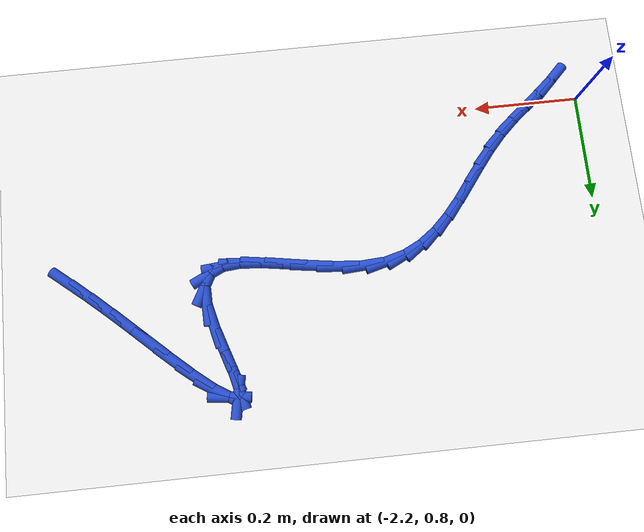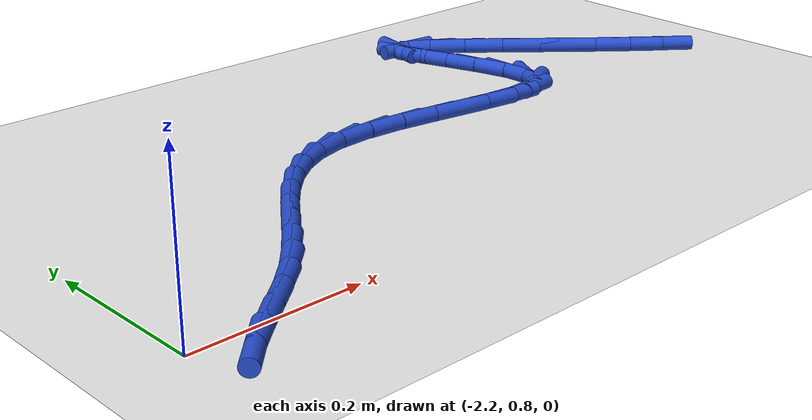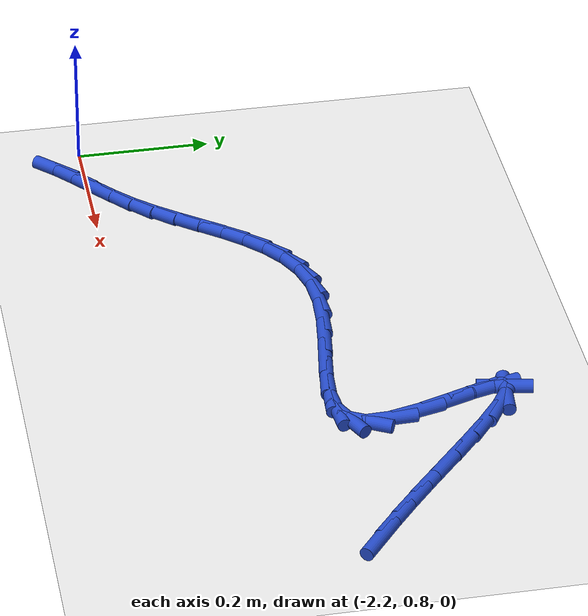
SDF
<sdf version="1.6">
 <world name="default">
  <model name="ground_plane">
   <static>1</static>
   <link name="link">
    <collision name="collision">
     <geometry><plane><normal>0 0 1</normal><size>100 100</size></plane></geometry>
     <surface><friction><ode><mu>100</mu><mu2>50</mu2></ode></friction></surface>
    </collision>
    <visual name="visual">
     <cast_shadows>0</cast_shadows>
     <geometry><plane><normal>0 0 1</normal><size>100 100</size></plane></geometry>
     <material>
      <script><uri>file://media/materials/scripts/gazebo.material</uri><name>Gazebo/WhiteGlow</name></script>
     </material>
    </visual>
   </link>
  </model>
  <model name="line">
   <link name="link_53">
    <pose>-1.193185371960711 1.0654235564630326 0.01 0 1.57 -0.6814885398059458</pose>
    <collision name="collision">
     <geometry><cylinder><radius>0.01</radius><length>0.08</length></cylinder></geometry>
    </collision>
    <visual name="visual">
     <material>
      <script><name>Gazebo/Blue</name><uri>file://media/materials/scripts/gazebo.material</uri></script>
     </material>
     <geometry><cylinder><radius>0.01</radius><length>0.08</length></cylinder></geometry>
    </visual>
   </link>
   <link name="link_54">
    <pose>-1.2267887813682719 1.0926801652494988 0.01 0 1.57 -0.705577640714517</pose>
    <collision name="collision">
     <geometry><cylinder><radius>0.01</radius><length>0.08</length></cylinder></geometry>
    </collision>
    <visual name="visual">
     <material>
      <script><name>Gazebo/Blue</name><uri>file://media/materials/scripts/gazebo.material</uri></script>
     </material>
     <geometry><cylinder><radius>0.01</radius><length>0.08</length></cylinder></geometry>
    </visual>
   </link>
   <link name="link_55">
    <pose>-1.262150488786631 1.12280367865597 0.01 0 1.57 -0.7235266784572728</pose>
    <collision name="collision">
     <geometry><cylinder><radius>0.01</radius><length>0.08</length></cylinder></geometry>
    </collision>
    <visual name="visual">
     <material>
      <script><name>Gazebo/Blue</name><uri>file://media/materials/scripts/gazebo.material</uri></script>
     </material>
     <geometry><cylinder><radius>0.01</radius><length>0.08</length></cylinder></geometry>
    </visual>
   </link>
   <link name="link_56">
    <pose>-1.299629878728414 1.1559102302926327 0.01 0 1.57 -0.73524054251963</pose>
    <collision name="collision">
     <geometry><cylinder><radius>0.01</radius><length>0.08</length></cylinder></geometry>
    </collision>
    <visual name="visual">
     <material>
      <script><name>Gazebo/Blue</name><uri>file://media/materials/scripts/gazebo.material</uri></script>
     </material>
     <geometry><cylinder><radius>0.01</radius><length>0.08</length></cylinder></geometry>
    </visual>
   </link>
   <link name="link_57">
    <pose>-1.3393691816638427 1.1918504423703078 0.01 0 1.57 -0.7340832677108964</pose>
    <collision name="collision">
     <geometry><cylinder><radius>0.01</radius><length>0.08</length></cylinder></geometry>
    </collision>
    <visual name="visual">
     <material>
      <script><name>Gazebo/Blue</name><uri>file://media/materials/scripts/gazebo.material</uri></script>
     </material>
     <geometry><cylinder><radius>0.01</radius><length>0.08</length></cylinder></geometry>
    </visual>
   </link>
   <link name="link_58">
    <pose>-1.3796368060279225 1.2281838394751738 0.01 0 1.57 -0.7154269703714127</pose>
    <collision name="collision">
     <geometry><cylinder><radius>0.01</radius><length>0.08</length></cylinder></geometry>
    </collision>
    <visual name="visual">
     <material>
      <script><name>Gazebo/Blue</name><uri>file://media/materials/scripts/gazebo.material</uri></script>
     </material>
     <geometry><cylinder><radius>0.01</radius><length>0.08</length></cylinder></geometry>
    </visual>
   </link>
   <link name="link_59">
    <pose>-1.4177431746995484 1.261298629819285 0.01 0 1.57 -0.6687835529094174</pose>
    <collision name="collision">
     <geometry><cylinder><radius>0.01</radius><length>0.08</length></cylinder></geometry>
    </collision>
    <visual name="visual">
     <material>
      <script><name>Gazebo/Blue</name><uri>file://media/materials/scripts/gazebo.material</uri></script>
     </material>
     <geometry><cylinder><radius>0.01</radius><length>0.08</length></cylinder></geometry>
    </visual>
   </link>
   <link name="link_60">
    <pose>-1.4509909949962605 1.287573587899027 0.01 0 1.57 -0.5517524189292895</pose>
    <collision name="collision">
     <geometry><cylinder><radius>0.01</radius><length>0.08</length></cylinder></geometry>
    </collision>
    <visual name="visual">
     <material>
      <script><name>Gazebo/Blue</name><uri>file://media/materials/scripts/gazebo.material</uri></script>
     </material>
     <geometry><cylinder><radius>0.01</radius><length>0.08</length></cylinder></geometry>
    </visual>
   </link>
   <link name="link_61">
    <pose>-1.4766829742356031 1.3033874882107896 0.01 0 1.57 -0.11169295148060926</pose>
    <collision name="collision">
     <geometry><cylinder><radius>0.01</radius><length>0.08</length></cylinder></geometry>
    </collision>
    <visual name="visual">
     <material>
      <script><name>Gazebo/Blue</name><uri>file://media/materials/scripts/gazebo.material</uri></script>
     </material>
     <geometry><cylinder><radius>0.01</radius><length>0.08</length></cylinder></geometry>
    </visual>
   </link>
   <link name="link_62">
    <pose>-1.4921218197351163 1.305119105250959 0.01 0 1.57 1.3940644213895959</pose>
    <collision name="collision">
     <geometry><cylinder><radius>0.01</radius><length>0.08</length></cylinder></geometry>
    </collision>
    <visual name="visual">
     <material>
      <script><name>Gazebo/Blue</name><uri>file://media/materials/scripts/gazebo.material</uri></script>
     </material>
     <geometry><cylinder><radius>0.01</radius><length>0.08</length></cylinder></geometry>
    </visual>
   </link>
   <link name="link_63">
    <pose>-1.4949090119919577 1.2895129072455203 0.01 0 1.57 -1.3175466240135953</pose>
    <collision name="collision">
     <geometry><cylinder><radius>0.01</radius><length>0.08</length></cylinder></geometry>
    </collision>
    <visual name="visual">
     <material>
      <script><name>Gazebo/Blue</name><uri>file://media/materials/scripts/gazebo.material</uri></script>
     </material>
     <geometry><cylinder><radius>0.01</radius><length>0.08</length></cylinder></geometry>
    </visual>
   </link>
   <link name="link_64">
    <pose>-1.4868822742854615 1.2584984577643017 0.01 0 1.57 -1.2421992598436171</pose>
    <collision name="collision">
     <geometry><cylinder><radius>0.01</radius><length>0.08</length></cylinder></geometry>
    </collision>
    <visual name="visual">
     <material>
      <script><name>Gazebo/Blue</name><uri>file://media/materials/scripts/gazebo.material</uri></script>
     </material>
     <geometry><cylinder><radius>0.01</radius><length>0.08</length></cylinder></geometry>
    </visual>
   </link>
   <link name="link_65">
    <pose>-1.473024576947186 1.217855053899099 0.01 0 1.57 -1.2524839921926199</pose>
    <collision name="collision">
     <geometry><cylinder><radius>0.01</radius><length>0.08</length></cylinder></geometry>
    </collision>
    <visual name="visual">
     <material>
      <script><name>Gazebo/Blue</name><uri>file://media/materials/scripts/gazebo.material</uri></script>
     </material>
     <geometry><cylinder><radius>0.01</radius><length>0.08</length></cylinder></geometry>
    </visual>
   </link>
   <link name="link_66">
    <pose>-1.458393380849566 1.1734531680063263 0.01 0 1.57 -1.3308367046124268</pose>
    <collision name="collision">
     <geometry><cylinder><radius>0.01</radius><length>0.08</length></cylinder></geometry>
    </collision>
    <visual name="visual">
     <material>
      <script><name>Gazebo/Blue</name><uri>file://media/materials/scripts/gazebo.material</uri></script>
     </material>
     <geometry><cylinder><radius>0.01</radius><length>0.08</length></cylinder></geometry>
    </visual>
   </link>
   <link name="link_67">
    <pose>-1.4480461468650367 1.1311632724423997 0.01 0 1.57 -1.5414716506826103</pose>
    <collision name="collision">
     <geometry><cylinder><radius>0.01</radius><length>0.08</length></cylinder></geometry>
    </collision>
    <visual name="visual">
     <material>
      <script><name>Gazebo/Blue</name><uri>file://media/materials/scripts/gazebo.material</uri></script>
     </material>
     <geometry><cylinder><radius>0.01</radius><length>0.08</length></cylinder></geometry>
    </visual>
   </link>
   <link name="link_68">
    <pose>-1.4470397856577737 1.0968552133212364 0.01 0 1.57 1.0788783696815802</pose>
    <collision name="collision">
     <geometry><cylinder><radius>0.01</radius><length>0.08</length></cylinder></geometry>
    </collision>
    <visual name="visual">
     <material>
      <script><name>Gazebo/Blue</name><uri>file://media/materials/scripts/gazebo.material</uri></script>
     </material>
     <geometry><cylinder><radius>0.01</radius><length>0.08</length></cylinder></geometry>
    </visual>
   </link>
   <link name="link_69">
    <pose>-1.4589219355356933 1.0746809954239753 0.01 0 1.57 0.4496814450634575</pose>
    <collision name="collision">
     <geometry><cylinder><radius>0.01</radius><length>0.08</length></cylinder></geometry>
    </collision>
    <visual name="visual">
     <material>
      <script><name>Gazebo/Blue</name><uri>file://media/materials/scripts/gazebo.material</uri></script>
     </material>
     <geometry><cylinder><radius>0.01</radius><length>0.08</length></cylinder></geometry>
    </visual>
   </link>
   <link name="link_70">
    <pose>-1.4824404182138615 1.0633295119212058 0.01 0 1.57 0.08848971333045619</pose>
    <collision name="collision">
     <geometry><cylinder><radius>0.01</radius><length>0.08</length></cylinder></geometry>
    </collision>
    <visual name="visual">
     <material>
      <script><name>Gazebo/Blue</name><uri>file://media/materials/scripts/gazebo.material</uri></script>
     </material>
     <geometry><cylinder><radius>0.01</radius><length>0.08</length></cylinder></geometry>
    </visual>
   </link>
   <link name="link_71">
    <pose>-1.5153910452092794 1.0604060858374942 0.01 0 1.57 -0.07724925856744368</pose>
    <collision name="collision">
     <geometry><cylinder><radius>0.01</radius><length>0.08</length></cylinder></geometry>
    </collision>
    <visual name="visual">
     <material>
      <script><name>Gazebo/Blue</name><uri>file://media/materials/scripts/gazebo.material</uri></script>
     </material>
     <geometry><cylinder><radius>0.01</radius><length>0.08</length></cylinder></geometry>
    </visual>
   </link>
   <link name="link_72">
    <pose>-1.5555696280389488 1.063516040197406 0.01 0 1.57 -0.1482041327249778</pose>
    <collision name="collision">
     <geometry><cylinder><radius>0.01</radius><length>0.08</length></cylinder></geometry>
    </collision>
    <visual name="visual">
     <material>
      <script><name>Gazebo/Blue</name><uri>file://media/materials/scripts/gazebo.material</uri></script>
     </material>
     <geometry><cylinder><radius>0.01</radius><length>0.08</length></cylinder></geometry>
    </visual>
   </link>
   <link name="link_73">
    <pose>-1.600771978219871 1.0702646980255075 0.01 0 1.57 -0.16492639531164513</pose>
    <collision name="collision">
     <geometry><cylinder><radius>0.01</radius><length>0.08</length></cylinder></geometry>
    </collision>
    <visual name="visual">
     <material>
      <script><name>Gazebo/Blue</name><uri>file://media/materials/scripts/gazebo.material</uri></script>
     </material>
     <geometry><cylinder><radius>0.01</radius><length>0.08</length></cylinder></geometry>
    </visual>
   </link>
   <link name="link_74">
    <pose>-1.6487939072690494 1.078257382346365 0.01 0 1.57 -0.1397574794900413</pose>
    <collision name="collision">
     <geometry><cylinder><radius>0.01</radius><length>0.08</length></cylinder></geometry>
    </collision>
    <visual name="visual">
     <material>
      <script><name>Gazebo/Blue</name><uri>file://media/materials/scripts/gazebo.material</uri></script>
     </material>
     <geometry><cylinder><radius>0.01</radius><length>0.08</length></cylinder></geometry>
    </visual>
   </link>
   <link name="link_75">
    <pose>-1.697431226703484 1.0850994161845446 0.01 0 1.57 -0.06995600874429944</pose>
    <collision name="collision">
     <geometry><cylinder><radius>0.01</radius><length>0.08</length></cylinder></geometry>
    </collision>
    <visual name="visual">
     <material>
      <script><name>Gazebo/Blue</name><uri>file://media/materials/scripts/gazebo.material</uri></script>
     </material>
     <geometry><cylinder><radius>0.01</radius><length>0.08</length></cylinder></geometry>
    </visual>
   </link>
   <link name="link_76">
    <pose>-1.7444797480401786 1.088396122564613 0.01 0 1.57 0.060960981338641224</pose>
    <collision name="collision">
     <geometry><cylinder><radius>0.01</radius><length>0.08</length></cylinder></geometry>
    </collision>
    <visual name="visual">
     <material>
      <script><name>Gazebo/Blue</name><uri>file://media/materials/scripts/gazebo.material</uri></script>
     </material>
     <geometry><cylinder><radius>0.01</radius><length>0.08</length></cylinder></geometry>
    </visual>
   </link>
   <link name="link_77">
    <pose>-1.7877378441819778 1.085755795064381 0.01 0 1.57 0.2573866097531275</pose>
    <collision name="collision">
     <geometry><cylinder><radius>0.01</radius><length>0.08</length></cylinder></geometry>
    </collision>
    <visual name="visual">
     <material>
      <script><name>Gazebo/Blue</name><uri>file://media/materials/scripts/gazebo.material</uri></script>
     </material>
     <geometry><cylinder><radius>0.01</radius><length>0.08</length></cylinder></geometry>
    </visual>
   </link>
   <link name="link_78">
    <pose>-1.8258188793652366 1.0757319090098154 0.01 0 1.57 0.45929069451560806</pose>
    <collision name="collision">
     <geometry><cylinder><radius>0.01</radius><length>0.08</length></cylinder></geometry>
    </collision>
    <visual name="visual">
     <material>
      <script><name>Gazebo/Blue</name><uri>file://media/materials/scripts/gazebo.material</uri></script>
     </material>
     <geometry><cylinder><radius>0.01</radius><length>0.08</length></cylinder></geometry>
    </visual>
   </link>
   <link name="link_79">
    <pose>-1.8593108027349114 1.0591679537909169 0.01 0 1.57 0.6344700896552029</pose>
    <collision name="collision">
     <geometry><cylinder><radius>0.01</radius><length>0.08</length></cylinder></geometry>
    </collision>
    <visual name="visual">
     <material>
      <script><name>Gazebo/Blue</name><uri>file://media/materials/scripts/gazebo.material</uri></script>
     </material>
     <geometry><cylinder><radius>0.01</radius><length>0.08</length></cylinder></geometry>
    </visual>
   </link>
   <link name="link_80">
    <pose>-1.8890947590160045 1.0372474507704252 0.01 0 1.57 0.76912073857601</pose>
    <collision name="collision">
     <geometry><cylinder><radius>0.01</radius><length>0.08</length></cylinder></geometry>
    </collision>
    <visual name="visual">
     <material>
      <script><name>Gazebo/Blue</name><uri>file://media/materials/scripts/gazebo.material</uri></script>
     </material>
     <geometry><cylinder><radius>0.01</radius><length>0.08</length></cylinder></geometry>
    </visual>
   </link>
   <link name="link_81">
    <pose>-1.9160518929335189 1.0111539213110818 0.01 0 1.57 0.8605243986561665</pose>
    <collision name="collision">
     <geometry><cylinder><radius>0.01</radius><length>0.08</length></cylinder></geometry>
    </collision>
    <visual name="visual">
     <material>
      <script><name>Gazebo/Blue</name><uri>file://media/materials/scripts/gazebo.material</uri></script>
     </material>
     <geometry><cylinder><radius>0.01</radius><length>0.08</length></cylinder></geometry>
    </visual>
   </link>
   <link name="link_82">
    <pose>-1.9410633492124556 0.982070886775626 0.01 0 1.57 0.911325802203178</pose>
    <collision name="collision">
     <geometry><cylinder><radius>0.01</radius><length>0.08</length></cylinder></geometry>
    </collision>
    <visual name="visual">
     <material>
      <script><name>Gazebo/Blue</name><uri>file://media/materials/scripts/gazebo.material</uri></script>
     </material>
     <geometry><cylinder><radius>0.01</radius><length>0.08</length></cylinder></geometry>
    </visual>
   </link>
   <link name="link_83">
    <pose>-1.9650102725778178 0.9511818685267979 0.01 0 1.57 0.9246616573894268</pose>
    <collision name="collision">
     <geometry><cylinder><radius>0.01</radius><length>0.08</length></cylinder></geometry>
    </collision>
    <visual name="visual">
     <material>
      <script><name>Gazebo/Blue</name><uri>file://media/materials/scripts/gazebo.material</uri></script>
     </material>
     <geometry><cylinder><radius>0.01</radius><length>0.08</length></cylinder></geometry>
    </visual>
   </link>
   <link name="link_84">
    <pose>-1.9887738077546069 0.9196703879273389 0.01 0 1.57 0.9019747291918594</pose>
    <collision name="collision">
     <geometry><cylinder><radius>0.01</radius><length>0.08</length></cylinder></geometry>
    </collision>
    <visual name="visual">
     <material>
      <script><name>Gazebo/Blue</name><uri>file://media/materials/scripts/gazebo.material</uri></script>
     </material>
     <geometry><cylinder><radius>0.01</radius><length>0.08</length></cylinder></geometry>
    </visual>
   </link>
   <link name="link_85">
    <pose>-2.013235099467826 0.8887199663399885 0.01 0 1.57 0.8426364904255277</pose>
    <collision name="collision">
     <geometry><cylinder><radius>0.01</radius><length>0.08</length></cylinder></geometry>
    </collision>
    <visual name="visual">
     <material>
      <script><name>Gazebo/Blue</name><uri>file://media/materials/scripts/gazebo.material</uri></script>
     </material>
     <geometry><cylinder><radius>0.01</radius><length>0.08</length></cylinder></geometry>
    </visual>
   </link>
   <link name="link_86">
    <pose>-2.039275292335897 0.8595141250179382 0.01 0 1.57 0.7584265235971142</pose>
    <collision name="collision">
     <geometry><cylinder><radius>0.01</radius><length>0.08</length></cylinder></geometry>
    </collision>
    <visual name="visual">
     <material>
      <script><name>Gazebo/Blue</name><uri>file://media/materials/scripts/gazebo.material</uri></script>
     </material>
     <geometry><cylinder><radius>0.01</radius><length>0.08</length></cylinder></geometry>
    </visual>
   </link>
   <link name="link_87">
    <pose>-2.0674084401912998 0.8328590634506005 0.01 0 1.57 0.7019475900518956</pose>
    <collision name="collision">
     <geometry><cylinder><radius>0.01</radius><length>0.08</length></cylinder></geometry>
    </collision>
    <visual name="visual">
     <material>
      <script><name>Gazebo/Blue</name><uri>file://media/materials/scripts/gazebo.material</uri></script>
     </material>
     <geometry><cylinder><radius>0.01</radius><length>0.08</length></cylinder></geometry>
    </visual>
   </link>
   <link name="link_88">
    <pose>-2.0967093038848406 0.808081574432287 0.01 0 1.57 0.6868038566524443</pose>
    <collision name="collision">
     <geometry><cylinder><radius>0.01</radius><length>0.08</length></cylinder></geometry>
    </collision>
    <visual name="visual">
     <material>
      <script><name>Gazebo/Blue</name><uri>file://media/materials/scripts/gazebo.material</uri></script>
     </material>
     <geometry><cylinder><radius>0.01</radius><length>0.08</length></cylinder></geometry>
    </visual>
   </link>
   <link name="link_89">
    <pose>-2.1258999452478844 0.7841459218647457 0.01 0 1.57 0.7147900512202157</pose>
    <collision name="collision">
     <geometry><cylinder><radius>0.01</radius><length>0.08</length></cylinder></geometry>
    </collision>
    <visual name="visual">
     <material>
      <script><name>Gazebo/Blue</name><uri>file://media/materials/scripts/gazebo.material</uri></script>
     </material>
     <geometry><cylinder><radius>0.01</radius><length>0.08</length></cylinder></geometry>
    </visual>
   </link>
   <link name="link_90">
    <pose>-2.1537024261117983 0.760016369649727 0.01 0 1.57 0.7897743422973054</pose>
    <collision name="collision">
     <geometry><cylinder><radius>0.01</radius><length>0.08</length></cylinder></geometry>
    </collision>
    <visual name="visual">
     <material>
      <script><name>Gazebo/Blue</name><uri>file://media/materials/scripts/gazebo.material</uri></script>
     </material>
     <geometry><cylinder><radius>0.01</radius><length>0.08</length></cylinder></geometry>
    </visual>
   </link>
  </model>
 </world>
</sdf>
